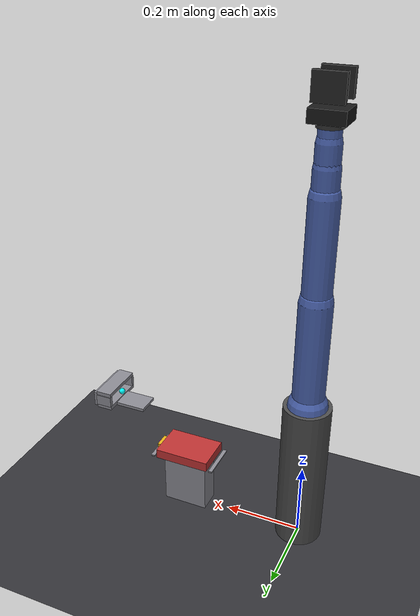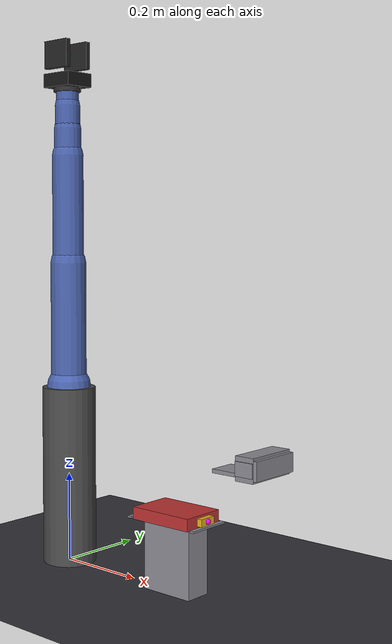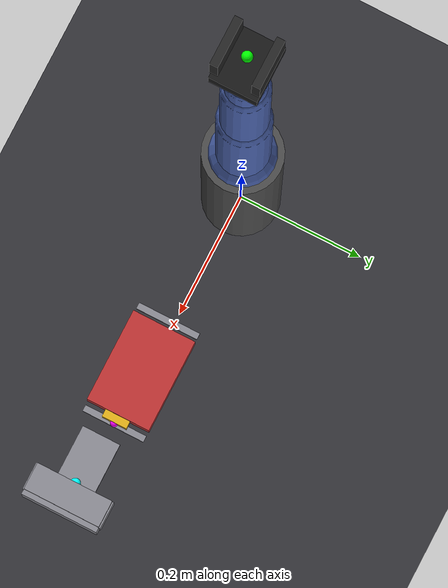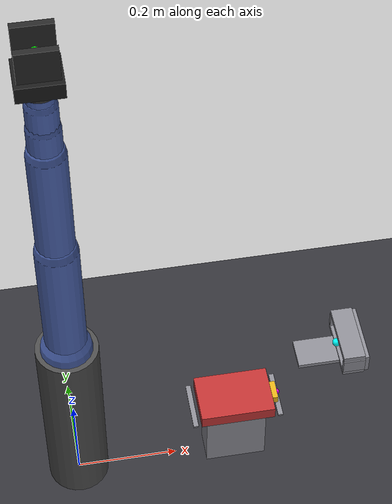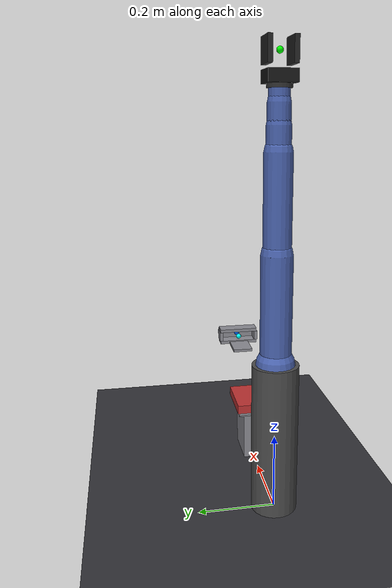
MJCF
<mujoco model="rebot_drive_reseat">
  <compiler angle="radian" autolimits="true"/>
  <option timestep="0.002" integrator="implicitfast" cone="elliptic" gravity="0 0 -9.81"/>

  <default>
    <default class="arm">
      <!-- Arm links do not collide (contype/conaffinity 0): avoids spurious arm
           self-collision and arm-vs-environment contacts. Only fingers and the
           drive participate in contact. -->
      <geom type="capsule" size="0.04" rgba="0.30 0.40 0.70 1" contype="0" conaffinity="0" density="700"/>
      <joint type="hinge" damping="1.0" armature="0.05"/>
      <motor gear="1" ctrlrange="-50 50"/>
    </default>
    <default class="finger">
      <geom type="box" rgba="0.15 0.15 0.15 1" contype="1" conaffinity="1"
            friction="2.5 0.10 0.0005" density="1000" solref="0.004 1" solimp="0.95 0.99 0.001"/>
      <joint type="slide" damping="5.0" armature="0.01"/>
    </default>
    <default class="env">
      <geom type="box" rgba="0.55 0.55 0.58 1" contype="1" conaffinity="1"
            friction="1.0 0.05 0.001" solref="0.004 1" solimp="0.95 0.99 0.001"/>
    </default>
    <default class="drive">
      <geom type="box" rgba="0.75 0.20 0.20 1" contype="1" conaffinity="1"
            friction="1.0 0.05 0.001" density="1800" solref="0.004 1" solimp="0.95 0.99 0.001"/>
    </default>
  </default>

  <visual>
    <global offwidth="640" offheight="480"/>
    <quality shadowsize="2048"/>
  </visual>

  <worldbody>
    <light name="top" pos="0.45 0 1.6" dir="0 0 -1" diffuse="0.8 0.8 0.8"/>
    <light name="fill" pos="1.0 -1.0 1.2" dir="-1 1 -1" diffuse="0.4 0.4 0.4"/>
    <geom name="floor" type="plane" size="3 3 0.1" rgba="0.20 0.20 0.22 1" contype="1" conaffinity="1"/>
    <geom name="base_column" type="cylinder" pos="0 0 0.20" size="0.06 0.20"
          rgba="0.30 0.30 0.30 1" contype="0" conaffinity="0"/>

    <camera name="front" pos="1.25 0.0 0.55" mode="targetbody" target="chassis"/>
    <camera name="side" pos="0.5 -1.10 0.55" mode="targetbody" target="chassis"/>

    <!-- 6-DoF arm. Shoulder mounted on a 0.40 m column so the bay (x~0.54, z~0.30)
         is reached at a comfortable elbow angle, not at near-singular full stretch. -->
    <body name="shoulder" pos="0 0 0.40" childclass="arm">
      <joint name="shoulder_pan" axis="0 0 1" range="-3.14 3.14"/>
      <geom name="g_shoulder" type="sphere" size="0.05"/>
      <body name="upper_arm" pos="0 0 0">
        <joint name="shoulder_lift" axis="0 1 0" range="-1.0 2.5"/>
        <geom name="g_upper" fromto="0 0 0 0 0 0.28" size="0.04"/>
        <body name="forearm" pos="0 0 0.28">
          <joint name="elbow" axis="0 1 0" range="-2.6 2.6"/>
          <geom name="g_fore" fromto="0 0 0 0 0 0.24" size="0.035"/>
          <body name="wrist1" pos="0 0 0.24">
            <joint name="wrist_1" axis="1 0 0" range="-3.14 3.14"/>
            <geom name="g_wrist1" fromto="0 0 0 0 0 0.06" size="0.030"/>
            <body name="wrist2" pos="0 0 0.06">
              <joint name="wrist_2" axis="0 1 0" range="-2.0 2.0"/>
              <geom name="g_wrist2" fromto="0 0 0 0 0 0.05" size="0.028"/>
              <body name="wrist3" pos="0 0 0.05">
                <joint name="wrist_3" axis="1 0 0" range="-3.14 3.14"/>
                <geom name="g_wrist3" fromto="0 0 0 0 0 0.03" size="0.025"/>
                <body name="flange" pos="0 0 0.03">
                  <geom name="g_flange" type="cylinder" pos="0 0 0.005" size="0.030 0.005"
                        contype="0" conaffinity="0" rgba="0.2 0.2 0.2 1"/>
                  <site name="ft_site" pos="0 0 0.01" size="0.010" rgba="1 1 0 1"/>
                  <camera name="wrist" pos="0 -0.10 0.04" xyaxes="1 0 0 0 0.45 0.9"/>
                  <body name="gripper_base" pos="0 0 0.01">
                    <geom name="g_gripper" type="box" pos="0 0 0.015" size="0.040 0.035 0.015"
                          contype="0" conaffinity="0" rgba="0.1 0.1 0.1 1"/>
                    <site name="ee_site" pos="0 0 0.07" size="0.008" rgba="0 1 0 1"/>
                    <body name="finger_left" pos="0 0.030 0.07" childclass="finger">
                      <joint name="gl" axis="0 1 0" range="0 0.07"/>
                      <geom name="g_finger_left" size="0.035 0.006 0.030"/>
                    </body>
                    <body name="finger_right" pos="0 -0.030 0.07" childclass="finger">
                      <joint name="gr" axis="0 -1 0" range="0 0.07"/>
                      <geom name="g_finger_right" size="0.035 0.006 0.030"/>
                    </body>
                  </body>
                </body>
              </body>
            </body>
          </body>
        </body>
      </body>
    </body>

    <body name="cradle" pos="0.32 0 0">
      <geom class="env" name="g_cradle_top" type="box" pos="0 0 0.075" size="0.060 0.030 0.075"/>
      <geom class="env" name="g_cradle_xm" type="box" pos="-0.085 0 0.152" size="0.005 0.050 0.002"/>
      <geom class="env" name="g_cradle_xp" type="box" pos="0.085 0 0.152" size="0.005 0.050 0.002"/>
    </body>

    <body name="chassis" pos="0.541 0 0.30">
      <geom class="env" name="g_bay_bottom" type="box" pos="0 0 -0.0195" size="0.021 0.060 0.005"/>
      <geom class="env" name="g_bay_top" type="box" pos="0 0 0.0195" size="0.021 0.060 0.005"/>
      <geom class="env" name="g_bay_yp" type="box" pos="0 0.0573 0" size="0.021 0.005 0.0145"/>
      <geom class="env" name="g_bay_ym" type="box" pos="0 -0.0573 0" size="0.021 0.005 0.0145"/>
      <geom class="env" name="g_bay_back" type="box" pos="0.024 0 0" size="0.005 0.060 0.0195"/>
      <geom class="env" name="g_bay_rail" type="box" pos="-0.061 0 -0.022" size="0.040 0.030 0.004"/>
      <site name="bay_socket" pos="0.019 0 0" size="0.008" rgba="0 0.4 1 1"/>
      <site name="bay_mouth" pos="-0.021 0 0" size="0.008" rgba="0 1 1 1"/>
    </body>

    <!-- 3.5 inch drive on a freejoint. Declared AFTER the arm so the qpos layout is
         j1..j6, gl, gr, then the freejoint (x y z qw qx qy qz). -->
    <body name="drive" pos="0.32 0 0.163" childclass="drive">
      <freejoint name="drive_free"/>
      <geom name="g_drive" type="box" size="0.0735 0.0508 0.01305"/>
      <geom name="g_connector" type="box" pos="0.0795 0 0" size="0.006 0.020 0.008" rgba="0.9 0.7 0.1 1"/>
      <site name="drive_connector" pos="0.0855 0 0" size="0.006" rgba="1 0 1 1"/>
      <!-- Grasp at the drive center of mass so the long drive does not pitch under
           gravity (drooping the connector). The grip still clears the bay slot mouth. -->
      <site name="drive_grasp" pos="0 0 0" size="0.006" rgba="1 0.5 0 1"/>
    </body>
  </worldbody>

  <equality>
    <!-- Couple the two slide fingers so one position actuator opens/closes both
         symmetrically: gl = gr. -->
    <joint joint1="gl" joint2="gr" polycoef="0 1 0 0 0"/>
    <weld name="grasp_weld" body1="gripper_base" body2="drive" active="false"
          solref="0.005 1" solimp="0.97 0.99 0.001"/>
  </equality>

  <actuator>
    <!-- Torque (MIT mode) actuators, gear 1 so ctrl == joint torque. -->
    <motor name="m_pan" joint="shoulder_pan" ctrlrange="-50 50"/>
    <motor name="m_lift" joint="shoulder_lift" ctrlrange="-100 100"/>
    <motor name="m_elbow" joint="elbow" ctrlrange="-60 60"/>
    <motor name="m_wrist1" joint="wrist_1" ctrlrange="-20 20"/>
    <motor name="m_wrist2" joint="wrist_2" ctrlrange="-20 20"/>
    <motor name="m_wrist3" joint="wrist_3" ctrlrange="-10 10"/>
    <!-- Gripper: one position actuator on gr; the equality mirrors gl. Command a width
         below contact and let the force limit hold the drive. -->
    <position name="m_grip" joint="gr" kp="3000" ctrlrange="0 0.06" forcerange="-120 120"/>
  </actuator>

  <sensor>
    <force name="wrist_force" site="ft_site"/>
    <torque name="wrist_torque" site="ft_site"/>
  </sensor>

  <keyframe>
    <!-- home: arm folded forward with the tool pointing down above the cradle, gripper
         open. qpos = j1..j6, gl, gr, drive(x y z qw qx qy qz). ctrl = 6 motors + grip. -->
    <key name="home"
         qpos="0 0.7 0.8 0 1.64 0 0.06 0.06 0.32 0 0.163 1 0 0 0"
         ctrl="0 0 0 0 0 0 0.06"/>
  </keyframe>
</mujoco>
